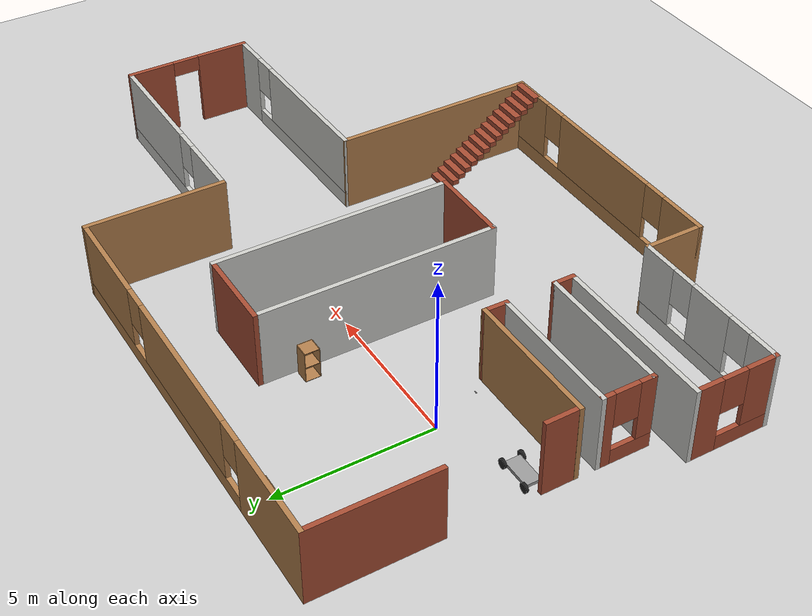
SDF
<sdf version="1.6">
 <world name="default">
  <model name="ground_plane">
   <static>1</static>
   <link name="link">
    <collision name="collision">
     <geometry><plane><normal>0 0 1</normal><size>100 100</size></plane></geometry>
     <surface><friction><ode><mu>100</mu><mu2>50</mu2></ode></friction></surface>
    </collision>
    <visual name="visual">
     <cast_shadows>0</cast_shadows>
     <geometry><plane><normal>0 0 1</normal><size>100 100</size></plane></geometry>
     <material>
      <script><uri>file://media/materials/scripts/gazebo.material</uri><name>Gazebo/Grey</name></script>
     </material>
    </visual>
   </link>
  </model>
  <model name="my1">
   <pose>6.37403 -1.86892 0 0 -0 0</pose>
   <link name="Stairs_1">
    <visual name="Stairs_1_Visual_0">
     <pose>3.20471 -4.20963 0.083333 0 -0 0</pose>
     <geometry><box><size>1 0.233333 0.166667</size></box></geometry>
     <material>
      <script><uri>file://media/materials/scripts/gazebo.material</uri><name>Gazebo/Bricks</name></script>
      <ambient>1 1 1 1</ambient>
     </material>
     <meta><layer>0</layer></meta>
    </visual>
    <collision name="Stairs_1_Collision_0">
     <geometry><box><size>1 0.233333 0.166667</size></box></geometry>
     <pose>3.20471 -4.20963 0.083333 0 -0 0</pose>
    </collision>
    <visual name="Stairs_1_Visual_1">
     <pose>3.20471 -4.44296 0.25 0 -0 0</pose>
     <geometry><box><size>1 0.233333 0.166667</size></box></geometry>
     <material>
      <script><uri>file://media/materials/scripts/gazebo.material</uri><name>Gazebo/Bricks</name></script>
      <ambient>1 1 1 1</ambient>
     </material>
     <meta><layer>0</layer></meta>
    </visual>
    <collision name="Stairs_1_Collision_1">
     <geometry><box><size>1 0.233333 0.166667</size></box></geometry>
     <pose>3.20471 -4.44296 0.25 0 -0 0</pose>
    </collision>
    <visual name="Stairs_1_Visual_2">
     <pose>3.20471 -4.6763 0.416667 0 -0 0</pose>
     <geometry><box><size>1 0.233333 0.166667</size></box></geometry>
     <material>
      <script><uri>file://media/materials/scripts/gazebo.material</uri><name>Gazebo/Bricks</name></script>
      <ambient>1 1 1 1</ambient>
     </material>
     <meta><layer>0</layer></meta>
    </visual>
    <collision name="Stairs_1_Collision_2">
     <geometry><box><size>1 0.233333 0.166667</size></box></geometry>
     <pose>3.20471 -4.6763 0.416667 0 -0 0</pose>
    </collision>
    <visual name="Stairs_1_Visual_3">
     <pose>3.20471 -4.90963 0.583333 0 -0 0</pose>
     <geometry><box><size>1 0.233333 0.166667</size></box></geometry>
     <material>
      <script><uri>file://media/materials/scripts/gazebo.material</uri><name>Gazebo/Bricks</name></script>
      <ambient>1 1 1 1</ambient>
     </material>
     <meta><layer>0</layer></meta>
    </visual>
    <collision name="Stairs_1_Collision_3">
     <geometry><box><size>1 0.233333 0.166667</size></box></geometry>
     <pose>3.20471 -4.90963 0.583333 0 -0 0</pose>
    </collision>
    <visual name="Stairs_1_Visual_4">
     <pose>3.20471 -5.14296 0.75 0 -0 0</pose>
     <geometry><box><size>1 0.233333 0.166667</size></box></geometry>
     <material>
      <script><uri>file://media/materials/scripts/gazebo.material</uri><name>Gazebo/Bricks</name></script>
      <ambient>1 1 1 1</ambient>
     </material>
     <meta><layer>0</layer></meta>
    </visual>
    <collision name="Stairs_1_Collision_4">
     <geometry><box><size>1 0.233333 0.166667</size></box></geometry>
     <pose>3.20471 -5.14296 0.75 0 -0 0</pose>
    </collision>
    <visual name="Stairs_1_Visual_5">
     <pose>3.20471 -5.3763 0.916667 0 -0 0</pose>
     <geometry><box><size>1 0.233333 0.166667</size></box></geometry>
     <material>
      <script><uri>file://media/materials/scripts/gazebo.material</uri><name>Gazebo/Bricks</name></script>
      <ambient>1 1 1 1</ambient>
     </material>
     <meta><layer>0</layer></meta>
    </visual>
    <collision name="Stairs_1_Collision_5">
     <geometry><box><size>1 0.233333 0.166667</size></box></geometry>
     <pose>3.20471 -5.3763 0.916667 0 -0 0</pose>
    </collision>
    <visual name="Stairs_1_Visual_6">
     <pose>3.20471 -5.60963 1.08333 0 -0 0</pose>
     <geometry><box><size>1 0.233333 0.166667</size></box></geometry>
     <material>
      <script><uri>file://media/materials/scripts/gazebo.material</uri><name>Gazebo/Bricks</name></script>
      <ambient>1 1 1 1</ambient>
     </material>
     <meta><layer>0</layer></meta>
    </visual>
    <collision name="Stairs_1_Collision_6">
     <geometry><box><size>1 0.233333 0.166667</size></box></geometry>
     <pose>3.20471 -5.60963 1.08333 0 -0 0</pose>
    </collision>
    <visual name="Stairs_1_Visual_7">
     <pose>3.20471 -5.84296 1.25 0 -0 0</pose>
     <geometry><box><size>1 0.233333 0.166667</size></box></geometry>
     <material>
      <script><uri>file://media/materials/scripts/gazebo.material</uri><name>Gazebo/Bricks</name></script>
      <ambient>1 1 1 1</ambient>
     </material>
     <meta><layer>0</layer></meta>
    </visual>
    <collision name="Stairs_1_Collision_7">
     <geometry><box><size>1 0.233333 0.166667</size></box></geometry>
     <pose>3.20471 -5.84296 1.25 0 -0 0</pose>
    </collision>
    <visual name="Stairs_1_Visual_8">
     <pose>3.20471 -6.0763 1.41667 0 -0 0</pose>
     <geometry><box><size>1 0.233333 0.166667</size></box></geometry>
     <material>
      <script><uri>file://media/materials/scripts/gazebo.material</uri><name>Gazebo/Bricks</name></script>
      <ambient>1 1 1 1</ambient>
     </material>
     <meta><layer>0</layer></meta>
    </visual>
    <collision name="Stairs_1_Collision_8">
     <geometry><box><size>1 0.233333 0.166667</size></box></geometry>
     <pose>3.20471 -6.0763 1.41667 0 -0 0</pose>
    </collision>
    <visual name="Stairs_1_Visual_9">
     <pose>3.20471 -6.30963 1.58333 0 -0 0</pose>
     <geometry><box><size>1 0.233333 0.166667</size></box></geometry>
     <material>
      <script><uri>file://media/materials/scripts/gazebo.material</uri><name>Gazebo/Bricks</name></script>
      <ambient>1 1 1 1</ambient>
     </material>
     <meta><layer>0</layer></meta>
    </visual>
    <collision name="Stairs_1_Collision_9">
     <geometry><box><size>1 0.233333 0.166667</size></box></geometry>
     <pose>3.20471 -6.30963 1.58333 0 -0 0</pose>
    </collision>
    <visual name="Stairs_1_Visual_10">
     <pose>3.20471 -6.54296 1.75 0 -0 0</pose>
     <geometry><box><size>1 0.233333 0.166667</size></box></geometry>
     <material>
      <script><uri>file://media/materials/scripts/gazebo.material</uri><name>Gazebo/Bricks</name></script>
      <ambient>1 1 1 1</ambient>
     </material>
     <meta><layer>0</layer></meta>
    </visual>
    <collision name="Stairs_1_Collision_10">
     <geometry><box><size>1 0.233333 0.166667</size></box></geometry>
     <pose>3.20471 -6.54296 1.75 0 -0 0</pose>
    </collision>
    <visual name="Stairs_1_Visual_11">
     <pose>3.20471 -6.7763 1.91667 0 -0 0</pose>
     <geometry><box><size>1 0.233333 0.166667</size></box></geometry>
     <material>
      <script><uri>file://media/materials/scripts/gazebo.material</uri><name>Gazebo/Bricks</name></script>
      <ambient>1 1 1 1</ambient>
     </material>
     <meta><layer>0</layer></meta>
    </visual>
    <collision name="Stairs_1_Collision_11">
     <geometry><box><size>1 0.233333 0.166667</size></box></geometry>
     <pose>3.20471 -6.7763 1.91667 0 -0 0</pose>
    </collision>
    <visual name="Stairs_1_Visual_12">
     <pose>3.20471 -7.00963 2.08333 0 -0 0</pose>
     <geometry><box><size>1 0.233333 0.166667</size></box></geometry>
     <material>
      <script><uri>file://media/materials/scripts/gazebo.material</uri><name>Gazebo/Bricks</name></script>
      <ambient>1 1 1 1</ambient>
     </material>
     <meta><layer>0</layer></meta>
    </visual>
    <collision name="Stairs_1_Collision_12">
     <geometry><box><size>1 0.233333 0.166667</size></box></geometry>
     <pose>3.20471 -7.00963 2.08333 0 -0 0</pose>
    </collision>
    <visual name="Stairs_1_Visual_13">
     <pose>3.20471 -7.24296 2.25 0 -0 0</pose>
     <geometry><box><size>1 0.233333 0.166667</size></box></geometry>
     <material>
      <script><uri>file://media/materials/scripts/gazebo.material</uri><name>Gazebo/Bricks</name></script>
      <ambient>1 1 1 1</ambient>
     </material>
     <meta><layer>0</layer></meta>
    </visual>
    <collision name="Stairs_1_Collision_13">
     <geometry><box><size>1 0.233333 0.166667</size></box></geometry>
     <pose>3.20471 -7.24296 2.25 0 -0 0</pose>
    </collision>
    <visual name="Stairs_1_Visual_14">
     <pose>3.20471 -7.4763 2.41667 0 -0 0</pose>
     <geometry><box><size>1 0.233333 0.166667</size></box></geometry>
     <material>
      <script><uri>file://media/materials/scripts/gazebo.material</uri><name>Gazebo/Bricks</name></script>
      <ambient>1 1 1 1</ambient>
     </material>
     <meta><layer>0</layer></meta>
    </visual>
    <collision name="Stairs_1_Collision_14">
     <geometry><box><size>1 0.233333 0.166667</size></box></geometry>
     <pose>3.20471 -7.4763 2.41667 0 -0 0</pose>
    </collision>
   </link>
   <link name="Wall_13">
    <collision name="Wall_13_Collision">
     <geometry><box><size>4.5 0.15 2.5</size></box></geometry>
     <pose>0 0 1.25 0 -0 0</pose>
    </collision>
    <visual name="Wall_13_Visual">
     <pose>0 0 1.25 0 -0 0</pose>
     <geometry><box><size>4.5 0.15 2.5</size></box></geometry>
     <material>
      <script><uri>file://media/materials/scripts/gazebo.material</uri><name>Gazebo/Wood</name></script>
      <ambient>1 1 1 1</ambient>
     </material>
     <meta><layer>0</layer></meta>
    </visual>
    <pose>-7.54667 -0.254206 0 0 -0 3.14159</pose>
   </link>
   <link name="Wall_15">
    <collision name="Wall_15_Collision">
     <geometry><box><size>1.17118 0.15 2.5</size></box></geometry>
     <pose>0 0 1.25 0 -0 0</pose>
    </collision>
    <visual name="Wall_15_Visual">
     <pose>0 0 1.25 0 -0 0</pose>
     <geometry><box><size>1.17118 0.15 2.5</size></box></geometry>
     <material>
      <script><uri>file://media/materials/scripts/gazebo.material</uri><name>Gazebo/Bricks</name></script>
      <ambient>1 1 1 1</ambient>
     </material>
     <meta><layer>0</layer></meta>
    </visual>
    <pose>-9.72167 0.256343 0 0 -0 1.58367</pose>
   </link>
   <link name="Wall_18">
    <collision name="Wall_18_Collision">
     <geometry><box><size>0.829029 0.15 2.5</size></box></geometry>
     <pose>0 0 1.25 0 -0 0</pose>
    </collision>
    <visual name="Wall_18_Visual">
     <pose>0 0 1.25 0 -0 0</pose>
     <geometry><box><size>0.829029 0.15 2.5</size></box></geometry>
     <material>
      <script><uri>file://media/materials/scripts/gazebo.material</uri><name>Gazebo/Bricks</name></script>
      <ambient>1 1 1 1</ambient>
     </material>
     <meta><layer>0</layer></meta>
    </visual>
    <pose>-5.37167 -0.593657 0 0 0 -1.59016</pose>
   </link>
   <link name="Wall_19">
    <collision name="Wall_19_Collision">
     <geometry><box><size>4.5 0.15 2.5</size></box></geometry>
     <pose>0 0 1.25 0 -0 0</pose>
    </collision>
    <visual name="Wall_19_Visual">
     <pose>0 0 1.25 0 -0 0</pose>
     <geometry><box><size>4.5 0.15 2.5</size></box></geometry>
     <material>
      <script><uri>file://media/materials/scripts/gazebo.material</uri><name>Gazebo/CeilingTiled</name></script>
      <ambient>1 1 1 1</ambient>
     </material>
     <meta><layer>0</layer></meta>
    </visual>
    <pose>-7.55325 -0.933108 0 0 -0 3.14159</pose>
   </link>
   <link name="Wall_20">
    <pose>-9.72825 -1.73311 0 0 0 -1.5708</pose>
    <visual name="Wall_20_Visual_0">
     <pose>-0.654101 0 1.25 0 -0 0</pose>
     <geometry><box><size>0.441799 0.15 2.5</size></box></geometry>
     <material>
      <script><uri>file://media/materials/scripts/gazebo.material</uri><name>Gazebo/Bricks</name></script>
      <ambient>1 1 1 1</ambient>
     </material>
     <meta><layer>0</layer></meta>
    </visual>
    <collision name="Wall_20_Collision_0">
     <geometry><box><size>0.441799 0.15 2.5</size></box></geometry>
     <pose>-0.654101 0 1.25 0 -0 0</pose>
    </collision>
    <visual name="Wall_20_Visual_1">
     <pose>0.220899 0 0.25 0 -0 0</pose>
     <geometry><box><size>1.3082 0.15 0.5</size></box></geometry>
     <material>
      <script><uri>file://media/materials/scripts/gazebo.material</uri><name>Gazebo/Bricks</name></script>
      <ambient>1 1 1 1</ambient>
     </material>
     <meta><layer>0</layer></meta>
    </visual>
    <collision name="Wall_20_Collision_1">
     <geometry><box><size>1.3082 0.15 0.5</size></box></geometry>
     <pose>0.220899 0 0.25 0 -0 0</pose>
    </collision>
    <visual name="Wall_20_Visual_2">
     <pose>0.620899 0 1.5 0 -0 0</pose>
     <geometry><box><size>0.508201 0.15 2</size></box></geometry>
     <material>
      <script><uri>file://media/materials/scripts/gazebo.material</uri><name>Gazebo/Bricks</name></script>
      <ambient>1 1 1 1</ambient>
     </material>
     <meta><layer>0</layer></meta>
    </visual>
    <collision name="Wall_20_Collision_2">
     <geometry><box><size>0.508201 0.15 2</size></box></geometry>
     <pose>0.620899 0 1.5 0 -0 0</pose>
    </collision>
    <visual name="Wall_20_Visual_3">
     <pose>-0.033201 0 1.9 0 -0 0</pose>
     <geometry><box><size>0.8 0.15 1.2</size></box></geometry>
     <material>
      <script><uri>file://media/materials/scripts/gazebo.material</uri><name>Gazebo/Bricks</name></script>
      <ambient>1 1 1 1</ambient>
     </material>
     <meta><layer>0</layer></meta>
    </visual>
    <collision name="Wall_20_Collision_3">
     <geometry><box><size>0.8 0.15 1.2</size></box></geometry>
     <pose>-0.033201 0 1.9 0 -0 0</pose>
    </collision>
   </link>
   <link name="Wall_21">
    <collision name="Wall_21_Collision">
     <geometry><box><size>4.5 0.15 2.5</size></box></geometry>
     <pose>0 0 1.25 0 -0 0</pose>
    </collision>
    <visual name="Wall_21_Visual">
     <pose>0 0 1.25 0 -0 0</pose>
     <geometry><box><size>4.5 0.15 2.5</size></box></geometry>
     <material>
      <script><uri>file://media/materials/scripts/gazebo.material</uri><name>Gazebo/CeilingTiled</name></script>
      <ambient>1 1 1 1</ambient>
     </material>
     <meta><layer>0</layer></meta>
    </visual>
    <pose>-7.55325 -2.53311 0 0 -0 0</pose>
   </link>
   <link name="Wall_24">
    <collision name="Wall_24_Collision">
     <geometry><box><size>0.75 0.15 2.5</size></box></geometry>
     <pose>0 0 1.25 0 -0 0</pose>
    </collision>
    <visual name="Wall_24_Visual">
     <pose>0 0 1.25 0 -0 0</pose>
     <geometry><box><size>0.75 0.15 2.5</size></box></geometry>
     <material>
      <script><uri>file://media/materials/scripts/gazebo.material</uri><name>Gazebo/Bricks</name></script>
      <ambient>1 1 1 1</ambient>
     </material>
     <meta><layer>0</layer></meta>
    </visual>
    <pose>-5.37825 -2.83311 0 0 0 -1.5708</pose>
   </link>
   <link name="Wall_25">
    <collision name="Wall_25_Collision">
     <geometry><box><size>5.5 0.15 2.5</size></box></geometry>
     <pose>0 0 1.25 0 -0 0</pose>
    </collision>
    <visual name="Wall_25_Visual">
     <pose>0 0 1.25 0 -0 0</pose>
     <geometry><box><size>5.5 0.15 2.5</size></box></geometry>
     <material>
      <script><uri>file://media/materials/scripts/gazebo.material</uri><name>Gazebo/CeilingTiled</name></script>
      <ambient>1 1 1 1</ambient>
     </material>
     <meta><layer>0</layer></meta>
    </visual>
    <pose>-8.05325 -3.13311 0 0 -0 3.14159</pose>
   </link>
   <link name="Wall_26">
    <pose>-10.7282 -4.43311 0 0 0 -1.5708</pose>
    <visual name="Wall_26_Visual_0">
     <pose>-0.917525 0 1.25 0 -0 0</pose>
     <geometry><box><size>0.914949 0.15 2.5</size></box></geometry>
     <material>
      <script><uri>file://media/materials/scripts/gazebo.material</uri><name>Gazebo/Bricks</name></script>
      <ambient>1 1 1 1</ambient>
     </material>
     <meta><layer>0</layer></meta>
    </visual>
    <collision name="Wall_26_Collision_0">
     <geometry><box><size>0.914949 0.15 2.5</size></box></geometry>
     <pose>-0.917525 0 1.25 0 -0 0</pose>
    </collision>
    <visual name="Wall_26_Visual_1">
     <pose>0.457475 0 0.25 0 -0 0</pose>
     <geometry><box><size>1.83505 0.15 0.5</size></box></geometry>
     <material>
      <script><uri>file://media/materials/scripts/gazebo.material</uri><name>Gazebo/Bricks</name></script>
      <ambient>1 1 1 1</ambient>
     </material>
     <meta><layer>0</layer></meta>
    </visual>
    <collision name="Wall_26_Collision_1">
     <geometry><box><size>1.83505 0.15 0.5</size></box></geometry>
     <pose>0.457475 0 0.25 0 -0 0</pose>
    </collision>
    <visual name="Wall_26_Visual_2">
     <pose>0.857475 0 1.5 0 -0 0</pose>
     <geometry><box><size>1.03505 0.15 2</size></box></geometry>
     <material>
      <script><uri>file://media/materials/scripts/gazebo.material</uri><name>Gazebo/Bricks</name></script>
      <ambient>1 1 1 1</ambient>
     </material>
     <meta><layer>0</layer></meta>
    </visual>
    <collision name="Wall_26_Collision_2">
     <geometry><box><size>1.03505 0.15 2</size></box></geometry>
     <pose>0.857475 0 1.5 0 -0 0</pose>
    </collision>
    <visual name="Wall_26_Visual_3">
     <pose>-0.060051 0 1.9 0 -0 0</pose>
     <geometry><box><size>0.8 0.15 1.2</size></box></geometry>
     <material>
      <script><uri>file://media/materials/scripts/gazebo.material</uri><name>Gazebo/Bricks</name></script>
      <ambient>1 1 1 1</ambient>
     </material>
     <meta><layer>0</layer></meta>
    </visual>
    <collision name="Wall_26_Collision_3">
     <geometry><box><size>0.8 0.15 1.2</size></box></geometry>
     <pose>-0.060051 0 1.9 0 -0 0</pose>
    </collision>
   </link>
   <link name="Wall_27">
    <pose>-8.05325 -5.73311 0 0 -0 0</pose>
    <visual name="Wall_27_Visual_0">
     <pose>-2.22077 0 1.25 0 -0 0</pose>
     <geometry><box><size>1.05847 0.15 2.5</size></box></geometry>
     <material>
      <script><uri>file://media/materials/scripts/gazebo.material</uri><name>Gazebo/CeilingTiled</name></script>
      <ambient>1 1 1 1</ambient>
     </material>
     <meta><layer>0</layer></meta>
    </visual>
    <collision name="Wall_27_Collision_0">
     <geometry><box><size>1.05847 0.15 2.5</size></box></geometry>
     <pose>-2.22077 0 1.25 0 -0 0</pose>
    </collision>
    <visual name="Wall_27_Visual_1">
     <pose>0.529234 0 0.25 0 -0 0</pose>
     <geometry><box><size>4.44153 0.15 0.5</size></box></geometry>
     <material>
      <script><uri>file://media/materials/scripts/gazebo.material</uri><name>Gazebo/CeilingTiled</name></script>
      <ambient>1 1 1 1</ambient>
     </material>
     <meta><layer>0</layer></meta>
    </visual>
    <collision name="Wall_27_Collision_1">
     <geometry><box><size>4.44153 0.15 0.5</size></box></geometry>
     <pose>0.529234 0 0.25 0 -0 0</pose>
    </collision>
    <visual name="Wall_27_Visual_2">
     <pose>-0.116533 0 1.5 0 -0 0</pose>
     <geometry><box><size>1.55 0.15 2</size></box></geometry>
     <material>
      <script><uri>file://media/materials/scripts/gazebo.material</uri><name>Gazebo/CeilingTiled</name></script>
      <ambient>1 1 1 1</ambient>
     </material>
     <meta><layer>0</layer></meta>
    </visual>
    <collision name="Wall_27_Collision_2">
     <geometry><box><size>1.55 0.15 2</size></box></geometry>
     <pose>-0.116533 0 1.5 0 -0 0</pose>
    </collision>
    <visual name="Wall_27_Visual_3">
     <pose>2.10423 0 1.5 0 -0 0</pose>
     <geometry><box><size>1.29153 0.15 2</size></box></geometry>
     <material>
      <script><uri>file://media/materials/scripts/gazebo.material</uri><name>Gazebo/CeilingTiled</name></script>
      <ambient>1 1 1 1</ambient>
     </material>
     <meta><layer>0</layer></meta>
    </visual>
    <collision name="Wall_27_Collision_3">
     <geometry><box><size>1.29153 0.15 2</size></box></geometry>
     <pose>2.10423 0 1.5 0 -0 0</pose>
    </collision>
    <visual name="Wall_27_Visual_4">
     <pose>-1.29153 0 1.9 0 -0 0</pose>
     <geometry><box><size>0.8 0.15 1.2</size></box></geometry>
     <material>
      <script><uri>file://media/materials/scripts/gazebo.material</uri><name>Gazebo/CeilingTiled</name></script>
      <ambient>1 1 1 1</ambient>
     </material>
     <meta><layer>0</layer></meta>
    </visual>
    <collision name="Wall_27_Collision_4">
     <geometry><box><size>0.8 0.15 1.2</size></box></geometry>
     <pose>-1.29153 0 1.9 0 -0 0</pose>
    </collision>
    <visual name="Wall_27_Visual_5">
     <pose>1.05847 0 1.9 0 -0 0</pose>
     <geometry><box><size>0.8 0.15 1.2</size></box></geometry>
     <material>
      <script><uri>file://media/materials/scripts/gazebo.material</uri><name>Gazebo/CeilingTiled</name></script>
      <ambient>1 1 1 1</ambient>
     </material>
     <meta><layer>0</layer></meta>
    </visual>
    <collision name="Wall_27_Collision_5">
     <geometry><box><size>0.8 0.15 1.2</size></box></geometry>
     <pose>1.05847 0 1.9 0 -0 0</pose>
    </collision>
   </link>
   <link name="Wall_30">
    <collision name="Wall_30_Collision">
     <geometry><box><size>2 0.15 2.5</size></box></geometry>
     <pose>0 0 1.25 0 -0 0</pose>
    </collision>
    <visual name="Wall_30_Visual">
     <pose>0 0 1.25 0 -0 0</pose>
     <geometry><box><size>2 0.15 2.5</size></box></geometry>
     <material>
      <script><uri>file://media/materials/scripts/gazebo.material</uri><name>Gazebo/Wood</name></script>
      <ambient>1 1 1 1</ambient>
     </material>
     <meta><layer>0</layer></meta>
    </visual>
    <pose>-5.37825 -6.65811 0 0 0 -1.5708</pose>
   </link>
   <link name="Wall_31">
    <pose>-0.828247 -7.58311 0 0 -0 0</pose>
    <visual name="Wall_31_Visual_0">
     <pose>-3.76785 0 1.25 0 -0 0</pose>
     <geometry><box><size>1.71431 0.15 2.5</size></box></geometry>
     <material>
      <script><uri>file://media/materials/scripts/gazebo.material</uri><name>Gazebo/Wood</name></script>
      <ambient>1 1 1 1</ambient>
     </material>
     <meta><layer>0</layer></meta>
    </visual>
    <collision name="Wall_31_Collision_0">
     <geometry><box><size>1.71431 0.15 2.5</size></box></geometry>
     <pose>-3.76785 0 1.25 0 -0 0</pose>
    </collision>
    <visual name="Wall_31_Visual_1">
     <pose>0.857154 0 0.25 0 -0 0</pose>
     <geometry><box><size>7.53569 0.15 0.5</size></box></geometry>
     <material>
      <script><uri>file://media/materials/scripts/gazebo.material</uri><name>Gazebo/Wood</name></script>
      <ambient>1 1 1 1</ambient>
     </material>
     <meta><layer>0</layer></meta>
    </visual>
    <collision name="Wall_31_Collision_1">
     <geometry><box><size>7.53569 0.15 0.5</size></box></geometry>
     <pose>0.857154 0 0.25 0 -0 0</pose>
    </collision>
    <visual name="Wall_31_Visual_2">
     <pose>0.056227 0 1.5 0 -0 0</pose>
     <geometry><box><size>4.33384 0.15 2</size></box></geometry>
     <material>
      <script><uri>file://media/materials/scripts/gazebo.material</uri><name>Gazebo/Wood</name></script>
      <ambient>1 1 1 1</ambient>
     </material>
     <meta><layer>0</layer></meta>
    </visual>
    <collision name="Wall_31_Collision_2">
     <geometry><box><size>4.33384 0.15 2</size></box></geometry>
     <pose>0.056227 0 1.5 0 -0 0</pose>
    </collision>
    <visual name="Wall_31_Visual_3">
     <pose>3.82407 0 1.5 0 -0 0</pose>
     <geometry><box><size>1.60185 0.15 2</size></box></geometry>
     <material>
      <script><uri>file://media/materials/scripts/gazebo.material</uri><name>Gazebo/Wood</name></script>
      <ambient>1 1 1 1</ambient>
     </material>
     <meta><layer>0</layer></meta>
    </visual>
    <collision name="Wall_31_Collision_3">
     <geometry><box><size>1.60185 0.15 2</size></box></geometry>
     <pose>3.82407 0 1.5 0 -0 0</pose>
    </collision>
    <visual name="Wall_31_Visual_4">
     <pose>-2.51069 0 1.9 0 -0 0</pose>
     <geometry><box><size>0.8 0.15 1.2</size></box></geometry>
     <material>
      <script><uri>file://media/materials/scripts/gazebo.material</uri><name>Gazebo/Wood</name></script>
      <ambient>1 1 1 1</ambient>
     </material>
     <meta><layer>0</layer></meta>
    </visual>
    <collision name="Wall_31_Collision_4">
     <geometry><box><size>0.8 0.15 1.2</size></box></geometry>
     <pose>-2.51069 0 1.9 0 -0 0</pose>
    </collision>
    <visual name="Wall_31_Visual_5">
     <pose>2.62315 0 1.9 0 -0 0</pose>
     <geometry><box><size>0.8 0.15 1.2</size></box></geometry>
     <material>
      <script><uri>file://media/materials/scripts/gazebo.material</uri><name>Gazebo/Wood</name></script>
      <ambient>1 1 1 1</ambient>
     </material>
     <meta><layer>0</layer></meta>
    </visual>
    <collision name="Wall_31_Collision_5">
     <geometry><box><size>0.8 0.15 1.2</size></box></geometry>
     <pose>2.62315 0 1.9 0 -0 0</pose>
    </collision>
   </link>
   <link name="Wall_32">
    <collision name="Wall_32_Collision">
     <geometry><box><size>6.75 0.15 2.5</size></box></geometry>
     <pose>0 0 1.25 0 -0 0</pose>
    </collision>
    <visual name="Wall_32_Visual">
     <pose>0 0 1.25 0 -0 0</pose>
     <geometry><box><size>6.75 0.15 2.5</size></box></geometry>
     <material>
      <script><uri>file://media/materials/scripts/gazebo.material</uri><name>Gazebo/Wood</name></script>
      <ambient>1 1 1 1</ambient>
     </material>
     <meta><layer>0</layer></meta>
    </visual>
    <pose>3.72175 -4.28311 0 0 -0 1.5708</pose>
   </link>
   <link name="Wall_34">
    <collision name="Wall_34_Collision">
     <geometry><box><size>4 0.15 2.5</size></box></geometry>
     <pose>0 0 1.25 0 -0 0</pose>
    </collision>
    <visual name="Wall_34_Visual">
     <pose>0 0 1.25 0 -0 0</pose>
     <geometry><box><size>4 0.15 2.5</size></box></geometry>
     <material>
      <script><uri>file://media/materials/scripts/gazebo.material</uri><name>Gazebo/Bricks</name></script>
      <ambient>1 1 1 1</ambient>
     </material>
     <meta><layer>0</layer></meta>
    </visual>
    <pose>-9.72299 5.65811 0 0 -0 1.5708</pose>
   </link>
   <link name="Wall_35">
    <pose>-3.04799 7.58311 0 0 -0 0</pose>
    <visual name="Wall_35_Visual_0">
     <pose>-5.05049 0 1.25 0 -0 0</pose>
     <geometry><box><size>3.39903 0.15 2.5</size></box></geometry>
     <material>
      <script><uri>file://media/materials/scripts/gazebo.material</uri><name>Gazebo/Wood</name></script>
      <ambient>1 1 1 1</ambient>
     </material>
     <meta><layer>0</layer></meta>
    </visual>
    <collision name="Wall_35_Collision_0">
     <geometry><box><size>3.39903 0.15 2.5</size></box></geometry>
     <pose>-5.05049 0 1.25 0 -0 0</pose>
    </collision>
    <visual name="Wall_35_Visual_1">
     <pose>1.69951 0 0.25 0 -0 0</pose>
     <geometry><box><size>10.101 0.15 0.5</size></box></geometry>
     <material>
      <script><uri>file://media/materials/scripts/gazebo.material</uri><name>Gazebo/Wood</name></script>
      <ambient>1 1 1 1</ambient>
     </material>
     <meta><layer>0</layer></meta>
    </visual>
    <collision name="Wall_35_Collision_1">
     <geometry><box><size>10.101 0.15 0.5</size></box></geometry>
     <pose>1.69951 0 0.25 0 -0 0</pose>
    </collision>
    <visual name="Wall_35_Visual_2">
     <pose>0.01495 0 1.5 0 -0 0</pose>
     <geometry><box><size>5.13185 0.15 2</size></box></geometry>
     <material>
      <script><uri>file://media/materials/scripts/gazebo.material</uri><name>Gazebo/Wood</name></script>
      <ambient>1 1 1 1</ambient>
     </material>
     <meta><layer>0</layer></meta>
    </visual>
    <collision name="Wall_35_Collision_2">
     <geometry><box><size>5.13185 0.15 2</size></box></geometry>
     <pose>0.01495 0 1.5 0 -0 0</pose>
    </collision>
    <visual name="Wall_35_Visual_3">
     <pose>5.06544 0 1.5 0 -0 0</pose>
     <geometry><box><size>3.36913 0.15 2</size></box></geometry>
     <material>
      <script><uri>file://media/materials/scripts/gazebo.material</uri><name>Gazebo/Wood</name></script>
      <ambient>1 1 1 1</ambient>
     </material>
     <meta><layer>0</layer></meta>
    </visual>
    <collision name="Wall_35_Collision_3">
     <geometry><box><size>3.36913 0.15 2</size></box></geometry>
     <pose>5.06544 0 1.5 0 -0 0</pose>
    </collision>
    <visual name="Wall_35_Visual_4">
     <pose>-2.95097 0 1.9 0 -0 0</pose>
     <geometry><box><size>0.8 0.15 1.2</size></box></geometry>
     <material>
      <script><uri>file://media/materials/scripts/gazebo.material</uri><name>Gazebo/Wood</name></script>
      <ambient>1 1 1 1</ambient>
     </material>
     <meta><layer>0</layer></meta>
    </visual>
    <collision name="Wall_35_Collision_4">
     <geometry><box><size>0.8 0.15 1.2</size></box></geometry>
     <pose>-2.95097 0 1.9 0 -0 0</pose>
    </collision>
    <visual name="Wall_35_Visual_5">
     <pose>2.98087 0 1.9 0 -0 0</pose>
     <geometry><box><size>0.8 0.15 1.2</size></box></geometry>
     <material>
      <script><uri>file://media/materials/scripts/gazebo.material</uri><name>Gazebo/Wood</name></script>
      <ambient>1 1 1 1</ambient>
     </material>
     <meta><layer>0</layer></meta>
    </visual>
    <collision name="Wall_35_Collision_5">
     <geometry><box><size>0.8 0.15 1.2</size></box></geometry>
     <pose>2.98087 0 1.9 0 -0 0</pose>
    </collision>
   </link>
   <link name="Wall_36">
    <collision name="Wall_36_Collision">
     <geometry><box><size>4.5 0.15 2.5</size></box></geometry>
     <pose>0 0 1.25 0 -0 0</pose>
    </collision>
    <visual name="Wall_36_Visual">
     <pose>0 0 1.25 0 -0 0</pose>
     <geometry><box><size>4.5 0.15 2.5</size></box></geometry>
     <material>
      <script><uri>file://media/materials/scripts/gazebo.material</uri><name>Gazebo/Wood</name></script>
      <ambient>1 1 1 1</ambient>
     </material>
     <meta><layer>0</layer></meta>
    </visual>
    <pose>3.62701 5.40811 0 0 0 -1.5708</pose>
   </link>
   <link name="Wall_37">
    <pose>7.17701 3.23311 0 0 -0 0</pose>
    <visual name="Wall_37_Visual_0">
     <pose>-2.48244 0 1.25 0 -0 0</pose>
     <geometry><box><size>2.28512 0.15 2.5</size></box></geometry>
     <material>
      <script><uri>file://media/materials/scripts/gazebo.material</uri><name>Gazebo/CeilingTiled</name></script>
      <ambient>1 1 1 1</ambient>
     </material>
     <meta><layer>0</layer></meta>
    </visual>
    <collision name="Wall_37_Collision_0">
     <geometry><box><size>2.28512 0.15 2.5</size></box></geometry>
     <pose>-2.48244 0 1.25 0 -0 0</pose>
    </collision>
    <visual name="Wall_37_Visual_1">
     <pose>1.14256 0 0.25 0 -0 0</pose>
     <geometry><box><size>4.96488 0.15 0.5</size></box></geometry>
     <material>
      <script><uri>file://media/materials/scripts/gazebo.material</uri><name>Gazebo/CeilingTiled</name></script>
      <ambient>1 1 1 1</ambient>
     </material>
     <meta><layer>0</layer></meta>
    </visual>
    <collision name="Wall_37_Collision_1">
     <geometry><box><size>4.96488 0.15 0.5</size></box></geometry>
     <pose>1.14256 0 0.25 0 -0 0</pose>
    </collision>
    <visual name="Wall_37_Visual_2">
     <pose>1.54256 0 1.5 0 -0 0</pose>
     <geometry><box><size>4.16488 0.15 2</size></box></geometry>
     <material>
      <script><uri>file://media/materials/scripts/gazebo.material</uri><name>Gazebo/CeilingTiled</name></script>
      <ambient>1 1 1 1</ambient>
     </material>
     <meta><layer>0</layer></meta>
    </visual>
    <collision name="Wall_37_Collision_2">
     <geometry><box><size>4.16488 0.15 2</size></box></geometry>
     <pose>1.54256 0 1.5 0 -0 0</pose>
    </collision>
    <visual name="Wall_37_Visual_3">
     <pose>-0.93988 0 1.9 0 -0 0</pose>
     <geometry><box><size>0.8 0.15 1.2</size></box></geometry>
     <material>
      <script><uri>file://media/materials/scripts/gazebo.material</uri><name>Gazebo/CeilingTiled</name></script>
      <ambient>1 1 1 1</ambient>
     </material>
     <meta><layer>0</layer></meta>
    </visual>
    <collision name="Wall_37_Collision_3">
     <geometry><box><size>0.8 0.15 1.2</size></box></geometry>
     <pose>-0.93988 0 1.9 0 -0 0</pose>
    </collision>
   </link>
   <link name="Wall_38">
    <pose>10.727 1.18311 0 0 0 -1.5708</pose>
    <visual name="Wall_38_Visual_0">
     <pose>-1.33889 0 1.25 0 -0 0</pose>
     <geometry><box><size>1.57222 0.15 2.5</size></box></geometry>
     <material>
      <script><uri>file://media/materials/scripts/gazebo.material</uri><name>Gazebo/Bricks</name></script>
      <ambient>1 1 1 1</ambient>
     </material>
     <meta><layer>0</layer></meta>
    </visual>
    <collision name="Wall_38_Collision_0">
     <geometry><box><size>1.57222 0.15 2.5</size></box></geometry>
     <pose>-1.33889 0 1.25 0 -0 0</pose>
    </collision>
    <visual name="Wall_38_Visual_1">
     <pose>1.23611 0 1.25 0 -0 0</pose>
     <geometry><box><size>1.77778 0.15 2.5</size></box></geometry>
     <material>
      <script><uri>file://media/materials/scripts/gazebo.material</uri><name>Gazebo/Bricks</name></script>
      <ambient>1 1 1 1</ambient>
     </material>
     <meta><layer>0</layer></meta>
    </visual>
    <collision name="Wall_38_Collision_1">
     <geometry><box><size>1.77778 0.15 2.5</size></box></geometry>
     <pose>1.23611 0 1.25 0 -0 0</pose>
    </collision>
    <visual name="Wall_38_Visual_2">
     <pose>-0.102782 0 2.25 0 -0 0</pose>
     <geometry><box><size>0.9 0.15 0.5</size></box></geometry>
     <material>
      <script><uri>file://media/materials/scripts/gazebo.material</uri><name>Gazebo/Bricks</name></script>
      <ambient>1 1 1 1</ambient>
     </material>
     <meta><layer>0</layer></meta>
    </visual>
    <collision name="Wall_38_Collision_2">
     <geometry><box><size>0.9 0.15 0.5</size></box></geometry>
     <pose>-0.102782 0 2.25 0 -0 0</pose>
    </collision>
   </link>
   <link name="Wall_39">
    <pose>7.22438 -0.925 0 0 0 -3.125</pose>
    <visual name="Wall_39_Visual_0">
     <pose>-2.9313 0 1.25 0 -0 0</pose>
     <geometry><box><size>1.29363 0.15 2.5</size></box></geometry>
     <material>
      <script><uri>file://media/materials/scripts/gazebo.material</uri><name>Gazebo/CeilingTiled</name></script>
      <ambient>1 1 1 1</ambient>
     </material>
     <meta><layer>0</layer></meta>
    </visual>
    <collision name="Wall_39_Collision_0">
     <geometry><box><size>1.29363 0.15 2.5</size></box></geometry>
     <pose>-2.9313 0 1.25 0 -0 0</pose>
    </collision>
    <visual name="Wall_39_Visual_1">
     <pose>0.646816 0 0.25 0 -0 0</pose>
     <geometry><box><size>5.86259 0.15 0.5</size></box></geometry>
     <material>
      <script><uri>file://media/materials/scripts/gazebo.material</uri><name>Gazebo/CeilingTiled</name></script>
      <ambient>1 1 1 1</ambient>
     </material>
     <meta><layer>0</layer></meta>
    </visual>
    <collision name="Wall_39_Collision_1">
     <geometry><box><size>5.86259 0.15 0.5</size></box></geometry>
     <pose>0.646816 0 0.25 0 -0 0</pose>
    </collision>
    <visual name="Wall_39_Visual_2">
     <pose>1.04682 0 1.5 0 -0 0</pose>
     <geometry><box><size>5.06259 0.15 2</size></box></geometry>
     <material>
      <script><uri>file://media/materials/scripts/gazebo.material</uri><name>Gazebo/CeilingTiled</name></script>
      <ambient>1 1 1 1</ambient>
     </material>
     <meta><layer>0</layer></meta>
    </visual>
    <collision name="Wall_39_Collision_2">
     <geometry><box><size>5.06259 0.15 2</size></box></geometry>
     <pose>1.04682 0 1.5 0 -0 0</pose>
    </collision>
    <visual name="Wall_39_Visual_3">
     <pose>-1.88448 0 1.9 0 -0 0</pose>
     <geometry><box><size>0.8 0.15 1.2</size></box></geometry>
     <material>
      <script><uri>file://media/materials/scripts/gazebo.material</uri><name>Gazebo/CeilingTiled</name></script>
      <ambient>1 1 1 1</ambient>
     </material>
     <meta><layer>0</layer></meta>
    </visual>
    <collision name="Wall_39_Collision_3">
     <geometry><box><size>0.8 0.15 1.2</size></box></geometry>
     <pose>-1.88448 0 1.9 0 -0 0</pose>
    </collision>
   </link>
   <link name="Wall_41">
    <collision name="Wall_41_Collision">
     <geometry><box><size>7.75 0.15 2.5</size></box></geometry>
     <pose>0 0 1.25 0 -0 0</pose>
    </collision>
    <visual name="Wall_41_Visual">
     <pose>0 0 1.25 0 -0 0</pose>
     <geometry><box><size>7.75 0.15 2.5</size></box></geometry>
     <material>
      <script><uri>file://media/materials/scripts/gazebo.material</uri><name>Gazebo/CeilingTiled</name></script>
      <ambient>1 1 1 1</ambient>
     </material>
     <meta><layer>0</layer></meta>
    </visual>
    <pose>-2.38133 1.34292 0 0 0 -1.5708</pose>
   </link>
   <link name="Wall_42">
    <collision name="Wall_42_Collision">
     <geometry><box><size>2.75 0.15 2.5</size></box></geometry>
     <pose>0 0 1.25 0 -0 0</pose>
    </collision>
    <visual name="Wall_42_Visual">
     <pose>0 0 1.25 0 -0 0</pose>
     <geometry><box><size>2.75 0.15 2.5</size></box></geometry>
     <material>
      <script><uri>file://media/materials/scripts/gazebo.material</uri><name>Gazebo/Bricks</name></script>
      <ambient>1 1 1 1</ambient>
     </material>
     <meta><layer>0</layer></meta>
    </visual>
    <pose>-1.08133 -2.45708 0 0 -0 0</pose>
   </link>
   <link name="Wall_43">
    <collision name="Wall_43_Collision">
     <geometry><box><size>7.75 0.15 2.5</size></box></geometry>
     <pose>0 0 1.25 0 -0 0</pose>
    </collision>
    <visual name="Wall_43_Visual">
     <pose>0 0 1.25 0 -0 0</pose>
     <geometry><box><size>7.75 0.15 2.5</size></box></geometry>
     <material>
      <script><uri>file://media/materials/scripts/gazebo.material</uri><name>Gazebo/CeilingTiled</name></script>
      <ambient>1 1 1 1</ambient>
     </material>
     <meta><layer>0</layer></meta>
    </visual>
    <pose>0.218668 1.34292 0 0 -0 1.5708</pose>
   </link>
   <link name="Wall_44">
    <collision name="Wall_44_Collision">
     <geometry><box><size>2.75 0.15 2.5</size></box></geometry>
     <pose>0 0 1.25 0 -0 0</pose>
    </collision>
    <visual name="Wall_44_Visual">
     <pose>0 0 1.25 0 -0 0</pose>
     <geometry><box><size>2.75 0.15 2.5</size></box></geometry>
     <material>
      <script><uri>file://media/materials/scripts/gazebo.material</uri><name>Gazebo/Bricks</name></script>
      <ambient>1 1 1 1</ambient>
     </material>
     <meta><layer>0</layer></meta>
    </visual>
    <pose>-1.08133 5.14292 0 0 -0 3.14159</pose>
   </link>
   <static>1</static>
  </model>
  <model name="stone_10_2_5_1cm">
   <link name="link">
    <pose>0 0 0.005 0 -0 0</pose>
    <inertial>
     <mass>0.0628</mass>
     <inertia>
      <ixx>3.79417e-06</ixx>
      <ixy>0</ixy>
      <ixz>0</ixz>
      <iyy>5.28567e-05</iyy>
      <iyz>0</iyz>
      <izz>5.56042e-05</izz>
     </inertia>
    </inertial>
    <collision name="collision">
     <geometry><box><size>0.1 0.025 0.01</size></box></geometry>
     <surface>
      <contact>
       <poissons_ratio>0.15</poissons_ratio>
       <elastic_modulus>8e+10</elastic_modulus>
       <ode><kp>100000</kp><kd>100</kd><max_vel>100</max_vel><min_depth>0.001</min_depth></ode>
      </contact>
      <friction>
       <torsional>
        <coefficient>1</coefficient>
        <use_patch_radius>0</use_patch_radius>
        <surface_radius>0.01</surface_radius>
       </torsional>
      </friction>
     </surface>
    </collision>
    <visual name="visual">
     <geometry><box><size>0.1 0.025 0.01</size></box></geometry>
     <material>
      <script><uri>file://media/materials/scripts/gazebo.material</uri><name>Gazebo/Grey</name></script>
     </material>
    </visual>
   </link>
   <pose>0.644039 -1.66355 -0.001002 0 -0 0</pose>
  </model>
  <model name="cart_front_steer">
   <link name="chassis">
    <pose>0 0 0.15 0 -0 0</pose>
    <inertial>
     <pose>0.1 0 0 0 -0 0</pose>
     <mass>10</mass>
     <inertia>
      <ixx>0.216667</ixx>
      <iyy>0.841667</iyy>
      <izz>1.04167</izz>
      <ixy>0</ixy>
      <ixz>0</ixz>
      <iyz>0</iyz>
     </inertia>
    </inertial>
    <collision name="collision"><geometry><box><size>1 0.5 0.1</size></box></geometry></collision>
    <visual name="visual">
     <geometry><box><size>1 0.5 0.1</size></box></geometry>
     <material>
      <script><uri>file://media/materials/scripts/gazebo.material</uri><name>Gazebo/Grey</name></script>
     </material>
    </visual>
   </link>
   <link name="wheel_front_left">
    <pose>0.5 0.298 0.15 -1.5708 -0.087266 0</pose>
    <inertial>
     <mass>0.5</mass>
     <inertia>
      <ixx>0.00307917</ixx>
      <iyy>0.00307917</iyy>
      <izz>0.005625</izz>
      <ixy>0</ixy>
      <ixz>0</ixz>
      <iyz>0</iyz>
     </inertia>
    </inertial>
    <collision name="collision">
     <geometry><cylinder><radius>0.15</radius><length>0.08</length></cylinder></geometry>
    </collision>
    <visual name="visual">
     <geometry><cylinder><radius>0.15</radius><length>0.08</length></cylinder></geometry>
     <material>
      <script><uri>file://media/materials/scripts/gazebo.material</uri><name>Gazebo/Black</name></script>
     </material>
    </visual>
   </link>
   <joint name="wheel_front_left_steer_spin" type="universal">
    <parent>chassis</parent>
    <child>wheel_front_left</child>
    <axis>
     <xyz>0 -1 0</xyz>
     <limit><lower>-0.610865</lower><upper>0.610865</upper></limit>
     <use_parent_model_frame>0</use_parent_model_frame>
     <dynamics><spring_reference>0</spring_reference><spring_stiffness>0</spring_stiffness></dynamics>
    </axis>
    <axis2>
     <xyz>0 0 1</xyz>
     <use_parent_model_frame>0</use_parent_model_frame>
     <dynamics><spring_reference>0</spring_reference><spring_stiffness>0</spring_stiffness></dynamics>
    </axis2>
   </joint>
   <link name="wheel_front_right">
    <pose>0.5 -0.298 0.15 -1.5708 -0.087266 0</pose>
    <inertial>
     <mass>0.5</mass>
     <inertia>
      <ixx>0.00307917</ixx>
      <iyy>0.00307917</iyy>
      <izz>0.005625</izz>
      <ixy>0</ixy>
      <ixz>0</ixz>
      <iyz>0</iyz>
     </inertia>
    </inertial>
    <collision name="collision">
     <geometry><cylinder><radius>0.15</radius><length>0.08</length></cylinder></geometry>
    </collision>
    <visual name="visual">
     <geometry><cylinder><radius>0.15</radius><length>0.08</length></cylinder></geometry>
     <material>
      <script><uri>file://media/materials/scripts/gazebo.material</uri><name>Gazebo/Black</name></script>
     </material>
    </visual>
   </link>
   <joint name="wheel_front_right_steer_spin" type="universal">
    <parent>chassis</parent>
    <child>wheel_front_right</child>
    <axis>
     <xyz>0 -1 0</xyz>
     <limit><lower>-0.610865</lower><upper>0.610865</upper></limit>
     <use_parent_model_frame>0</use_parent_model_frame>
     <dynamics><spring_reference>0</spring_reference><spring_stiffness>0</spring_stiffness></dynamics>
    </axis>
    <axis2>
     <xyz>0 0 1</xyz>
     <use_parent_model_frame>0</use_parent_model_frame>
     <dynamics><spring_reference>0</spring_reference><spring_stiffness>0</spring_stiffness></dynamics>
    </axis2>
   </joint>
   <link name="wheel_rear_left">
    <pose>-0.5 0.298 0.15 -1.5708 0 0</pose>
    <inertial>
     <mass>0.5</mass>
     <inertia>
      <ixx>0.00307917</ixx>
      <iyy>0.00307917</iyy>
      <izz>0.005625</izz>
      <ixy>0</ixy>
      <ixz>0</ixz>
      <iyz>0</iyz>
     </inertia>
    </inertial>
    <collision name="collision">
     <geometry><cylinder><radius>0.15</radius><length>0.08</length></cylinder></geometry>
    </collision>
    <visual name="visual">
     <geometry><cylinder><radius>0.15</radius><length>0.08</length></cylinder></geometry>
     <material>
      <script><uri>file://media/materials/scripts/gazebo.material</uri><name>Gazebo/Black</name></script>
     </material>
    </visual>
   </link>
   <joint name="wheel_rear_left_spin" type="revolute">
    <parent>chassis</parent>
    <child>wheel_rear_left</child>
    <axis>
     <xyz>0 0 1</xyz>
     <use_parent_model_frame>0</use_parent_model_frame>
     <limit><lower>-1e+16</lower><upper>1e+16</upper></limit>
     <dynamics><spring_reference>0</spring_reference><spring_stiffness>0</spring_stiffness></dynamics>
    </axis>
   </joint>
   <link name="wheel_rear_right">
    <pose>-0.5 -0.298 0.15 -1.5708 0 0</pose>
    <inertial>
     <mass>0.5</mass>
     <inertia>
      <ixx>0.00307917</ixx>
      <iyy>0.00307917</iyy>
      <izz>0.005625</izz>
      <ixy>0</ixy>
      <ixz>0</ixz>
      <iyz>0</iyz>
     </inertia>
    </inertial>
    <collision name="collision">
     <geometry><cylinder><radius>0.15</radius><length>0.08</length></cylinder></geometry>
    </collision>
    <visual name="visual">
     <geometry><cylinder><radius>0.15</radius><length>0.08</length></cylinder></geometry>
     <material>
      <script><uri>file://media/materials/scripts/gazebo.material</uri><name>Gazebo/Black</name></script>
     </material>
    </visual>
   </link>
   <joint name="wheel_rear_right_spin" type="revolute">
    <parent>chassis</parent>
    <child>wheel_rear_right</child>
    <axis>
     <xyz>0 0 1</xyz>
     <use_parent_model_frame>0</use_parent_model_frame>
     <limit><lower>-1e+16</lower><upper>1e+16</upper></limit>
     <dynamics><spring_reference>0</spring_reference><spring_stiffness>0</spring_stiffness></dynamics>
    </axis>
   </joint>
   <pose>-2.61143 -1.02052 1e-06 4e-06 -1e-06 0.000133</pose>
  </model>
  <model name="cabinet">
   <static>1</static>
   <link name="cabinet_bottom_plate">
    <inertial>
     <pose>0 0 -1 0 -0 0</pose>
     <inertia><ixx>2.05</ixx><ixy>0</ixy><ixz>0</ixz><iyy>2.05</iyy><iyz>0</iyz><izz>2.05</izz></inertia>
     <mass>25</mass>
    </inertial>
    <collision name="cabinet_bottom_plate_geom">
     <pose>0 0 0.01 0 -0 0</pose>
     <geometry><box><size>0.45 0.45 0.02</size></box></geometry>
    </collision>
    <visual name="cabinet_bottom_plate_geom_visual">
     <pose>0 0 0.01 0 -0 0</pose>
     <geometry><box><size>0.45 0.45 0.02</size></box></geometry>
     <material>
      <script><uri>file://media/materials/scripts/gazebo.material</uri><name>Gazebo/Wood</name></script>
     </material>
    </visual>
    <collision name="cabinet_bottom_plate_geom_cabinet_back_plate">
     <pose>0.235 0 0.51 0 -0 0</pose>
     <geometry><box><size>0.02 0.45 1.02</size></box></geometry>
    </collision>
    <visual name="cabinet_bottom_plate_geom_cabinet_back_plate_visual">
     <pose>0.235 0 0.51 0 -0 0</pose>
     <geometry><box><size>0.02 0.45 1.02</size></box></geometry>
     <material>
      <script><uri>file://media/materials/scripts/gazebo.material</uri><name>Gazebo/Wood</name></script>
     </material>
    </visual>
    <collision name="cabinet_bottom_plate_geom_cabinet_left_plate">
     <pose>0 0.235 0.51 0 -0 0</pose>
     <geometry><box><size>0.45 0.02 1.02</size></box></geometry>
    </collision>
    <visual name="cabinet_bottom_plate_geom_cabinet_left_plate_visual">
     <pose>0 0.235 0.51 0 -0 0</pose>
     <geometry><box><size>0.45 0.02 1.02</size></box></geometry>
     <material>
      <script><uri>file://media/materials/scripts/gazebo.material</uri><name>Gazebo/Wood</name></script>
     </material>
    </visual>
    <collision name="cabinet_bottom_plate_geom_cabinet_middle_plate">
     <pose>0 0 0.51 0 -0 0</pose>
     <geometry><box><size>0.45 0.45 0.02</size></box></geometry>
    </collision>
    <visual name="cabinet_bottom_plate_geom_cabinet_middle_plate_visual">
     <pose>0 0 0.51 0 -0 0</pose>
     <geometry><box><size>0.45 0.45 0.02</size></box></geometry>
     <material>
      <script><uri>file://media/materials/scripts/gazebo.material</uri><name>Gazebo/Wood</name></script>
     </material>
    </visual>
    <collision name="cabinet_bottom_plate_geom_cabinet_right_plate">
     <pose>0 -0.235 0.51 0 -0 0</pose>
     <geometry><box><size>0.45 0.02 1.02</size></box></geometry>
    </collision>
    <visual name="cabinet_bottom_plate_geom_cabinet_right_plate_visual">
     <pose>0 -0.235 0.51 0 -0 0</pose>
     <geometry><box><size>0.45 0.02 1.02</size></box></geometry>
     <material>
      <script><uri>file://media/materials/scripts/gazebo.material</uri><name>Gazebo/Wood</name></script>
     </material>
    </visual>
    <collision name="cabinet_bottom_plate_geom_cabinet_top_plate">
     <pose>0 0 1.01 0 -0 0</pose>
     <geometry><box><size>0.45 0.45 0.02</size></box></geometry>
    </collision>
    <visual name="cabinet_bottom_plate_geom_cabinet_top_plate_visual">
     <pose>0 0 1.01 0 -0 0</pose>
     <geometry><box><size>0.45 0.45 0.02</size></box></geometry>
     <material>
      <script><uri>file://media/materials/scripts/gazebo.material</uri><name>Gazebo/Wood</name></script>
     </material>
    </visual>
   </link>
   <pose>3.61516 1.91705 0 0 -0 0</pose>
  </model>
  <model name="bookshelf">
   <static>1</static>
   <link name="link">
    <inertial><mass>1</mass></inertial>
    <collision name="back">
     <pose>0 0.005 0.6 0 -0 0</pose>
     <geometry><box><size>0.9 0.01 1.2</size></box></geometry>
    </collision>
    <visual name="visual1">
     <pose>0 0.005 0.6 0 -0 0</pose>
     <geometry><box><size>0.9 0.01 1.2</size></box></geometry>
     <material>
      <script><uri>file://media/materials/scripts/gazebo.material</uri><name>Gazebo/Wood</name></script>
     </material>
    </visual>
    <collision name="left_side">
     <pose>0.45 -0.195 0.6 0 -0 0</pose>
     <geometry><box><size>0.02 0.4 1.2</size></box></geometry>
    </collision>
    <visual name="visual2">
     <pose>0.45 -0.195 0.6 0 -0 0</pose>
     <geometry><box><size>0.02 0.4 1.2</size></box></geometry>
     <material>
      <script><uri>file://media/materials/scripts/gazebo.material</uri><name>Gazebo/Wood</name></script>
     </material>
    </visual>
    <collision name="right_side">
     <pose>-0.45 -0.195 0.6 0 -0 0</pose>
     <geometry><box><size>0.02 0.4 1.2</size></box></geometry>
    </collision>
    <visual name="visual3">
     <pose>-0.45 -0.195 0.6 0 -0 0</pose>
     <geometry><box><size>0.02 0.4 1.2</size></box></geometry>
     <material>
      <script><uri>file://media/materials/scripts/gazebo.material</uri><name>Gazebo/Wood</name></script>
     </material>
    </visual>
    <collision name="bottom">
     <pose>0 -0.195 0.03 0 -0 0</pose>
     <geometry><box><size>0.88 0.4 0.06</size></box></geometry>
    </collision>
    <visual name="visual4">
     <pose>0 -0.195 0.03 0 -0 0</pose>
     <geometry><box><size>0.88 0.4 0.06</size></box></geometry>
     <material>
      <script><uri>file://media/materials/scripts/gazebo.material</uri><name>Gazebo/Wood</name></script>
     </material>
    </visual>
    <collision name="top">
     <pose>0 -0.195 1.19 0 -0 0</pose>
     <geometry><box><size>0.88 0.4 0.02</size></box></geometry>
    </collision>
    <visual name="visual5">
     <pose>0 -0.195 1.19 0 -0 0</pose>
     <geometry><box><size>0.88 0.4 0.02</size></box></geometry>
     <material>
      <script><uri>file://media/materials/scripts/gazebo.material</uri><name>Gazebo/Wood</name></script>
     </material>
    </visual>
    <collision name="low_shelf">
     <pose>0 -0.195 0.43 0 -0 0</pose>
     <geometry><box><size>0.88 0.4 0.02</size></box></geometry>
    </collision>
    <visual name="visual6">
     <pose>0 -0.195 0.43 0 -0 0</pose>
     <geometry><box><size>0.88 0.4 0.02</size></box></geometry>
     <material>
      <script><uri>file://media/materials/scripts/gazebo.material</uri><name>Gazebo/Wood</name></script>
     </material>
    </visual>
    <collision name="high_shelf">
     <pose>0 -0.195 0.8 0 -0 0</pose>
     <geometry><box><size>0.88 0.4 0.02</size></box></geometry>
    </collision>
    <visual name="visual7">
     <pose>0 -0.195 0.8 0 -0 0</pose>
     <geometry><box><size>0.88 0.4 0.02</size></box></geometry>
     <material>
      <script><uri>file://media/materials/scripts/gazebo.material</uri><name>Gazebo/Wood</name></script>
     </material>
    </visual>
   </link>
   <pose>-0.721406 5.5295 0 0 -0 0</pose>
  </model>
 </world>
</sdf>
